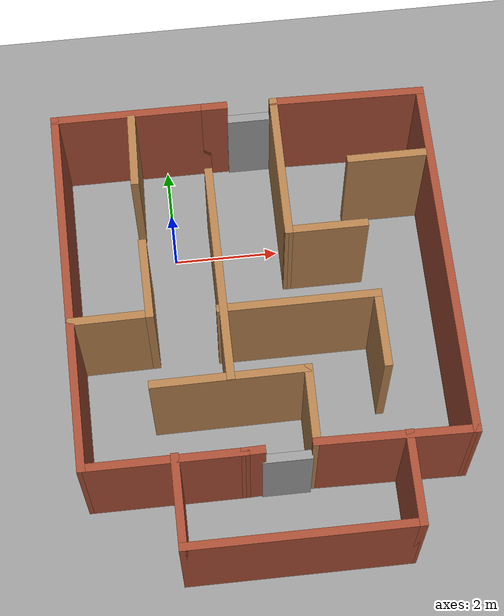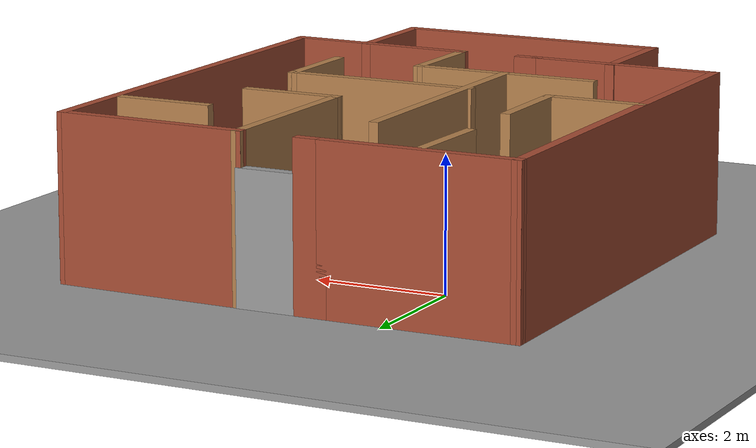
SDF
<sdf version="1.7">
 <world name="default">
  <light name="sun" type="directional">
   <pose>0 0 10 0 -0 0</pose>
   <diffuse>0.8 0.8 0.8 1</diffuse>
   <specular>0.2 0.2 0.2 1</specular>
   <attenuation>
    <range>1000</range>
    <constant>0.9</constant>
    <linear>0.01</linear>
    <quadratic>0.001</quadratic>
   </attenuation>
   <direction>-0.5 0.1 -0.9</direction>
   <spot><inner_angle>0</inner_angle><outer_angle>0</outer_angle><falloff>0</falloff></spot>
  </light>
  <model name="ground_plane">
   <static>1</static>
   <link name="link">
    <collision name="collision">
     <geometry><plane><normal>0 0 1</normal><size>100 100</size></plane></geometry>
     <surface><friction><ode><mu>100</mu><mu2>50</mu2></ode></friction></surface>
    </collision>
    <visual name="visual">
     <cast_shadows>0</cast_shadows>
     <geometry><plane><normal>0 0 1</normal><size>100 100</size></plane></geometry>
     <material>
      <script><uri>file://media/materials/scripts/gazebo.material</uri><name>Gazebo/Grey</name></script>
     </material>
    </visual>
   </link>
  </model>
  <gravity>0 0 -9.8</gravity>
  <magnetic_field>6e-06 2.3e-05 -4.2e-05</magnetic_field>
  <atmosphere type="adiabatic"/>
  <physics type="ode">
   <max_step_size>0.001</max_step_size>
   <real_time_factor>1</real_time_factor>
   <real_time_update_rate>1000</real_time_update_rate>
  </physics>
  <scene><ambient>0.4 0.4 0.4 1</ambient><background>0.7 0.7 0.7 1</background><shadows>1</shadows></scene>
  <audio><device>default</device></audio>
  <spherical_coordinates>
   <surface_model>EARTH_WGS84</surface_model>
   <latitude_deg>0</latitude_deg>
   <longitude_deg>0</longitude_deg>
   <elevation>0</elevation>
   <heading_deg>0</heading_deg>
  </spherical_coordinates>
  <model name="maze">
   <pose>1.45265 -2.24838 0 0 -0 0</pose>
   <link name="Door_1">
    <collision name="Door_1_Collision">
     <geometry><box><size>0.9 0.17 2</size></box></geometry>
     <pose>0 0 1 0 -0 0</pose>
    </collision>
    <visual name="Door_1_Visual">
     <pose>0 0 1 0 -0 0</pose>
     <geometry><box><size>0.9 0.17 2</size></box></geometry>
     <material>
      <script><uri>file://media/materials/scripts/gazebo.material</uri><name>Gazebo/Grey</name></script>
     </material>
    </visual>
    <pose>0.238667 4.22756 0 0 -0 0</pose>
   </link>
   <link name="Door_2">
    <collision name="Door_2_Collision">
     <geometry><box><size>0.9 0.17 2</size></box></geometry>
     <pose>0 0 1 0 -0 0</pose>
    </collision>
    <visual name="Door_2_Visual">
     <pose>0 0 1 0 -0 0</pose>
     <geometry><box><size>0.9 0.17 2</size></box></geometry>
     <material>
      <script><uri>file://media/materials/scripts/gazebo.material</uri><name>Gazebo/Grey</name></script>
     </material>
    </visual>
    <pose>0.168707 -2.68102 0 0 -0 0</pose>
   </link>
   <link name="Wall_0">
    <collision name="Wall_0_Collision">
     <geometry><box><size>7.07487 0.15 2.5</size></box></geometry>
     <pose>0 0 1.25 0 -0 0</pose>
    </collision>
    <visual name="Wall_0_Visual">
     <pose>0 0 1.25 0 -0 0</pose>
     <geometry><box><size>7.07487 0.15 2.5</size></box></geometry>
     <material>
      <script><uri>file://media/materials/scripts/gazebo.material</uri><name>Gazebo/Bricks</name></script>
      <ambient>1 1 1 1</ambient>
     </material>
     <meta><layer>0</layer></meta>
    </visual>
    <pose>-3.45028 0.784579 0 0 -0 -1.56355</pose>
   </link>
   <link name="Wall_1">
    <collision name="Wall_1_Collision">
     <geometry><box><size>2.97883 0.15 2.5</size></box></geometry>
     <pose>0 0 1.25 0 -0 0</pose>
    </collision>
    <visual name="Wall_1_Visual">
     <pose>0 0 1.25 0 -0 0</pose>
     <geometry><box><size>2.97883 0.15 2.5</size></box></geometry>
     <material>
      <script><uri>file://media/materials/scripts/gazebo.material</uri><name>Gazebo/Bricks</name></script>
      <ambient>1 1 1 1</ambient>
     </material>
     <meta><layer>0</layer></meta>
    </visual>
    <pose>-1.99328 -2.67769 0 0 -0 0</pose>
   </link>
   <link name="Wall_10">
    <collision name="Wall_10_Collision">
     <geometry><box><size>2.9489 0.15 2.5</size></box></geometry>
     <pose>0 0 1.25 0 -0 0</pose>
    </collision>
    <visual name="Wall_10_Visual">
     <pose>0 0 1.25 0 -0 0</pose>
     <geometry><box><size>2.9489 0.15 2.5</size></box></geometry>
     <material>
      <script><uri>file://media/materials/scripts/gazebo.material</uri><name>Gazebo/Bricks</name></script>
      <ambient>1 1 1 1</ambient>
     </material>
     <meta><layer>0</layer></meta>
    </visual>
    <pose>2.07512 4.20132 0 0 -0 -0.018748</pose>
   </link>
   <link name="Wall_11">
    <collision name="Wall_11_Collision">
     <geometry><box><size>7.0061 0.15 2.5</size></box></geometry>
     <pose>0 0 1.25 0 -0 0</pose>
    </collision>
    <visual name="Wall_11_Visual">
     <pose>0 0 1.25 0 -0 0</pose>
     <geometry><box><size>7.0061 0.15 2.5</size></box></geometry>
     <material>
      <script><uri>file://media/materials/scripts/gazebo.material</uri><name>Gazebo/Bricks</name></script>
      <ambient>1 1 1 1</ambient>
     </material>
     <meta><layer>0</layer></meta>
    </visual>
    <pose>3.47433 0.747035 0 0 -0 -1.5708</pose>
   </link>
   <link name="Wall_12">
    <collision name="Wall_12_Collision">
     <geometry><box><size>2.94928 0.15 2.5</size></box></geometry>
     <pose>0 0 1.25 0 -0 0</pose>
    </collision>
    <visual name="Wall_12_Visual">
     <pose>0 0 1.25 0 -0 0</pose>
     <geometry><box><size>2.94928 0.15 2.5</size></box></geometry>
     <material>
      <script><uri>file://media/materials/scripts/gazebo.material</uri><name>Gazebo/Bricks</name></script>
      <ambient>1 1 1 1</ambient>
     </material>
     <meta><layer>0</layer></meta>
    </visual>
    <pose>2.07512 -2.65478 0 0 -0 3.12284</pose>
   </link>
   <link name="Wall_13">
    <collision name="Wall_13_Collision">
     <geometry><box><size>1.53216 0.15 2.5</size></box></geometry>
     <pose>0 0 1.25 0 -0 0</pose>
    </collision>
    <visual name="Wall_13_Visual">
     <pose>0 0 1.25 0 -0 0</pose>
     <geometry><box><size>1.53216 0.15 2.5</size></box></geometry>
     <material>
      <script><uri>file://media/materials/scripts/gazebo.material</uri><name>Gazebo/Wood</name></script>
      <ambient>1 1 1 1</ambient>
     </material>
     <meta><layer>0</layer></meta>
    </visual>
    <pose>0.684664 -1.93769 0 0 -0 1.55814</pose>
   </link>
   <link name="Wall_14">
    <collision name="Wall_14_Collision">
     <geometry><box><size>2.91349 0.15 2.5</size></box></geometry>
     <pose>0 0 1.25 0 -0 0</pose>
    </collision>
    <visual name="Wall_14_Visual">
     <pose>0 0 1.25 0 -0 0</pose>
     <geometry><box><size>2.91349 0.15 2.5</size></box></geometry>
     <material>
      <script><uri>file://media/materials/scripts/gazebo.material</uri><name>Gazebo/Wood</name></script>
      <ambient>1 1 1 1</ambient>
     </material>
     <meta><layer>0</layer></meta>
    </visual>
    <pose>-0.688306 -1.25558 0 0 -0 -3.13526</pose>
   </link>
   <link name="Wall_16">
    <collision name="Wall_16_Collision">
     <geometry><box><size>4.25 0.15 2.5</size></box></geometry>
     <pose>0 0 1.25 0 -0 0</pose>
    </collision>
    <visual name="Wall_16_Visual">
     <pose>0 0 1.25 0 -0 0</pose>
     <geometry><box><size>4.25 0.15 2.5</size></box></geometry>
     <material>
      <script><uri>file://media/materials/scripts/gazebo.material</uri><name>Gazebo/Wood</name></script>
      <ambient>1 1 1 1</ambient>
     </material>
     <meta><layer>0</layer></meta>
    </visual>
    <pose>-0.688306 0.803168 0 0 -0 1.5708</pose>
   </link>
   <link name="Wall_18">
    <collision name="Wall_18_Collision">
     <geometry><box><size>3 0.15 2.5</size></box></geometry>
     <pose>0 0 1.25 0 -0 0</pose>
    </collision>
    <visual name="Wall_18_Visual">
     <pose>0 0 1.25 0 -0 0</pose>
     <geometry><box><size>3 0.15 2.5</size></box></geometry>
     <material>
      <script><uri>file://media/materials/scripts/gazebo.material</uri><name>Gazebo/Wood</name></script>
      <ambient>1 1 1 1</ambient>
     </material>
     <meta><layer>0</layer></meta>
    </visual>
    <pose>0.684224 0.064923 0 0 -0 0</pose>
   </link>
   <link name="Wall_19">
    <collision name="Wall_19_Collision">
     <geometry><box><size>1.5 0.15 2.5</size></box></geometry>
     <pose>0 0 1.25 0 -0 0</pose>
    </collision>
    <visual name="Wall_19_Visual">
     <pose>0 0 1.25 0 -0 0</pose>
     <geometry><box><size>1.5 0.15 2.5</size></box></geometry>
     <material>
      <script><uri>file://media/materials/scripts/gazebo.material</uri><name>Gazebo/Wood</name></script>
      <ambient>1 1 1 1</ambient>
     </material>
     <meta><layer>0</layer></meta>
    </visual>
    <pose>2.10922 -0.610077 0 0 -0 -1.5708</pose>
   </link>
   <link name="Wall_21">
    <collision name="Wall_21_Collision">
     <geometry><box><size>1.5 0.15 2.5</size></box></geometry>
     <pose>0 0 1.25 0 -0 0</pose>
    </collision>
    <visual name="Wall_21_Visual">
     <pose>0 0 1.25 0 -0 0</pose>
     <geometry><box><size>1.5 0.15 2.5</size></box></geometry>
     <material>
      <script><uri>file://media/materials/scripts/gazebo.material</uri><name>Gazebo/Wood</name></script>
      <ambient>1 1 1 1</ambient>
     </material>
     <meta><layer>0</layer></meta>
    </visual>
    <pose>2.66267 2.84584 0 0 -0 0</pose>
   </link>
   <link name="Wall_23">
    <collision name="Wall_23_Collision">
     <geometry><box><size>3 0.15 2.5</size></box></geometry>
     <pose>0 0 1.25 0 -0 0</pose>
    </collision>
    <visual name="Wall_23_Visual">
     <pose>0 0 1.25 0 -0 0</pose>
     <geometry><box><size>3 0.15 2.5</size></box></geometry>
     <material>
      <script><uri>file://media/materials/scripts/gazebo.material</uri><name>Gazebo/Bricks</name></script>
      <ambient>1 1 1 1</ambient>
     </material>
     <meta><layer>0</layer></meta>
    </visual>
    <pose>-2.05037 4.24685 0 0 -0 0</pose>
   </link>
   <link name="Wall_25">
    <collision name="Wall_25_Collision">
     <geometry><box><size>0.433142 0.15 2.5</size></box></geometry>
     <pose>0 0 1.25 0 -0 0</pose>
    </collision>
    <visual name="Wall_25_Visual">
     <pose>0 0 1.25 0 -0 0</pose>
     <geometry><box><size>0.433142 0.15 2.5</size></box></geometry>
     <material>
      <script><uri>file://media/materials/scripts/gazebo.material</uri><name>Gazebo/Bricks</name></script>
      <ambient>1 1 1 1</ambient>
     </material>
     <meta><layer>0</layer></meta>
    </visual>
    <pose>-0.437338 -2.67415 0 0 -0 0.025059</pose>
   </link>
   <link name="Wall_27">
    <collision name="Wall_27_Collision">
     <geometry><box><size>0.5 0.15 2.5</size></box></geometry>
     <pose>0 0 1.25 0 -0 0</pose>
    </collision>
    <visual name="Wall_27_Visual">
     <pose>0 0 1.25 0 -0 0</pose>
     <geometry><box><size>0.5 0.15 2.5</size></box></geometry>
     <material>
      <script><uri>file://media/materials/scripts/gazebo.material</uri><name>Gazebo/Bricks</name></script>
      <ambient>1 1 1 1</ambient>
     </material>
     <meta><layer>0</layer></meta>
    </visual>
    <pose>-0.450371 4.24685 0 0 -0 0</pose>
   </link>
   <link name="Wall_3">
    <collision name="Wall_3_Collision">
     <geometry><box><size>1.5645 0.15 2.5</size></box></geometry>
     <pose>0 0 1.25 0 -0 0</pose>
    </collision>
    <visual name="Wall_3_Visual">
     <pose>0 0 1.25 0 -0 0</pose>
     <geometry><box><size>1.5645 0.15 2.5</size></box></geometry>
     <material>
      <script><uri>file://media/materials/scripts/gazebo.material</uri><name>Gazebo/Wood</name></script>
      <ambient>1 1 1 1</ambient>
     </material>
     <meta><layer>0</layer></meta>
    </visual>
    <pose>-2.72254 0.087258 0 0 -0 0.010752</pose>
   </link>
   <link name="Wall_30">
    <collision name="Wall_30_Collision">
     <geometry><box><size>1.75 0.15 2.5</size></box></geometry>
     <pose>0 0 1.25 0 -0 0</pose>
    </collision>
    <visual name="Wall_30_Visual">
     <pose>0 0 1.25 0 -0 0</pose>
     <geometry><box><size>1.75 0.15 2.5</size></box></geometry>
     <material>
      <script><uri>file://media/materials/scripts/gazebo.material</uri><name>Gazebo/Bricks</name></script>
      <ambient>1 1 1 1</ambient>
     </material>
     <meta><layer>0</layer></meta>
    </visual>
    <pose>-1.7993 -3.44747 0 0 -0 -1.5708</pose>
   </link>
   <link name="Wall_31">
    <collision name="Wall_31_Collision">
     <geometry><box><size>4.25 0.15 2.5</size></box></geometry>
     <pose>0 0 1.25 0 -0 0</pose>
    </collision>
    <visual name="Wall_31_Visual">
     <pose>0 0 1.25 0 -0 0</pose>
     <geometry><box><size>4.25 0.15 2.5</size></box></geometry>
     <material>
      <script><uri>file://media/materials/scripts/gazebo.material</uri><name>Gazebo/Bricks</name></script>
      <ambient>1 1 1 1</ambient>
     </material>
     <meta><layer>0</layer></meta>
    </visual>
    <pose>0.250699 -4.24747 0 0 -0 0</pose>
   </link>
   <link name="Wall_32">
    <collision name="Wall_32_Collision">
     <geometry><box><size>1.75 0.15 2.5</size></box></geometry>
     <pose>0 0 1.25 0 -0 0</pose>
    </collision>
    <visual name="Wall_32_Visual">
     <pose>0 0 1.25 0 -0 0</pose>
     <geometry><box><size>1.75 0.15 2.5</size></box></geometry>
     <material>
      <script><uri>file://media/materials/scripts/gazebo.material</uri><name>Gazebo/Bricks</name></script>
      <ambient>1 1 1 1</ambient>
     </material>
     <meta><layer>0</layer></meta>
    </visual>
    <pose>2.3007 -3.44747 0 0 -0 1.5708</pose>
   </link>
   <link name="Wall_4">
    <collision name="Wall_4_Collision">
     <geometry><box><size>1.5645 0.15 2.5</size></box></geometry>
     <pose>0 0 1.25 0 -0 0</pose>
    </collision>
    <visual name="Wall_4_Visual">
     <pose>0 0 1.25 0 -0 0</pose>
     <geometry><box><size>1.5645 0.15 2.5</size></box></geometry>
     <material>
      <script><uri>file://media/materials/scripts/gazebo.material</uri><name>Gazebo/Wood</name></script>
      <ambient>1 1 1 1</ambient>
     </material>
     <meta><layer>0</layer></meta>
    </visual>
    <pose>-2.02293 0.802069 0 0 -0 1.58155</pose>
   </link>
   <link name="Wall_6">
    <collision name="Wall_6_Collision">
     <geometry><box><size>1.47971 0.15 2.5</size></box></geometry>
     <pose>0 0 1.25 0 -0 0</pose>
    </collision>
    <visual name="Wall_6_Visual">
     <pose>0 0 1.25 0 -0 0</pose>
     <geometry><box><size>1.47971 0.15 2.5</size></box></geometry>
     <material>
      <script><uri>file://media/materials/scripts/gazebo.material</uri><name>Gazebo/Wood</name></script>
      <ambient>1 1 1 1</ambient>
     </material>
     <meta><layer>0</layer></meta>
    </visual>
    <pose>-2.05253 3.47548 0 0 -0 -1.59711</pose>
   </link>
   <link name="Wall_8">
    <collision name="Wall_8_Collision">
     <geometry><box><size>1.54964 0.15 2.5</size></box></geometry>
     <pose>0 0 1.25 0 -0 0</pose>
    </collision>
    <visual name="Wall_8_Visual">
     <pose>0 0 1.25 0 -0 0</pose>
     <geometry><box><size>1.54964 0.15 2.5</size></box></geometry>
     <material>
      <script><uri>file://media/materials/scripts/gazebo.material</uri><name>Gazebo/Wood</name></script>
      <ambient>1 1 1 1</ambient>
     </material>
     <meta><layer>0</layer></meta>
    </visual>
    <pose>1.35803 1.49911 0 0 -0 3.14159</pose>
   </link>
   <link name="Wall_9">
    <collision name="Wall_9_Collision">
     <geometry><box><size>2.87851 0.15 2.5</size></box></geometry>
     <pose>0 0 1.25 0 -0 0</pose>
    </collision>
    <visual name="Wall_9_Visual">
     <pose>0 0 1.25 0 -0 0</pose>
     <geometry><box><size>2.87851 0.15 2.5</size></box></geometry>
     <material>
      <script><uri>file://media/materials/scripts/gazebo.material</uri><name>Gazebo/Wood</name></script>
      <ambient>1 1 1 1</ambient>
     </material>
     <meta><layer>0</layer></meta>
    </visual>
    <pose>0.667174 2.86333 0 0 -0 1.56439</pose>
   </link>
   <static>1</static>
  </model>
  <model name="ground_plane_0">
   <static>1</static>
   <link name="link">
    <collision name="collision">
     <geometry><plane><normal>0 0 1</normal><size>100 100</size></plane></geometry>
     <surface><friction><ode><mu>100</mu><mu2>50</mu2></ode></friction></surface>
    </collision>
    <visual name="visual">
     <cast_shadows>0</cast_shadows>
     <geometry><plane><normal>0 0 1</normal><size>100 100</size></plane></geometry>
     <material>
      <script><uri>file://media/materials/scripts/gazebo.material</uri><name>Gazebo/Grey</name></script>
     </material>
    </visual>
   </link>
   <pose>0.162016 -0.421782 0 0 -0 0</pose>
  </model>
 </world>
</sdf>
